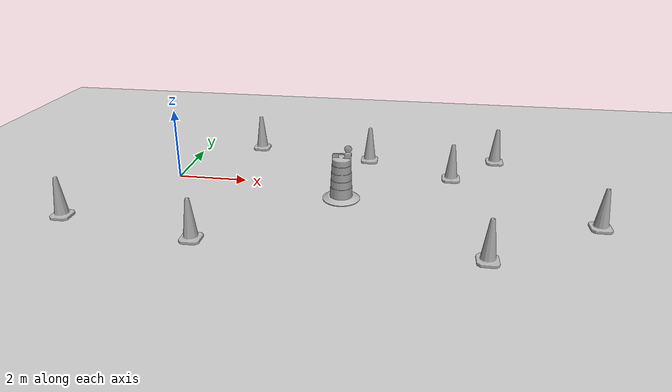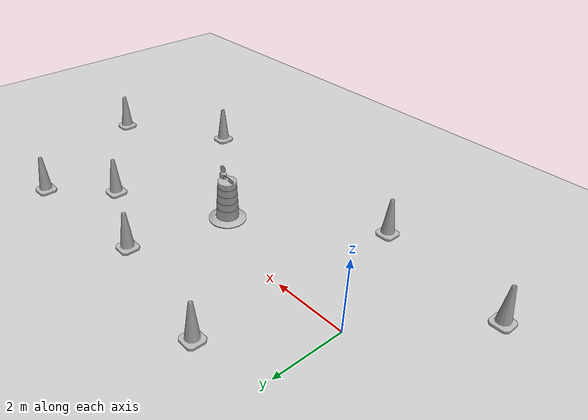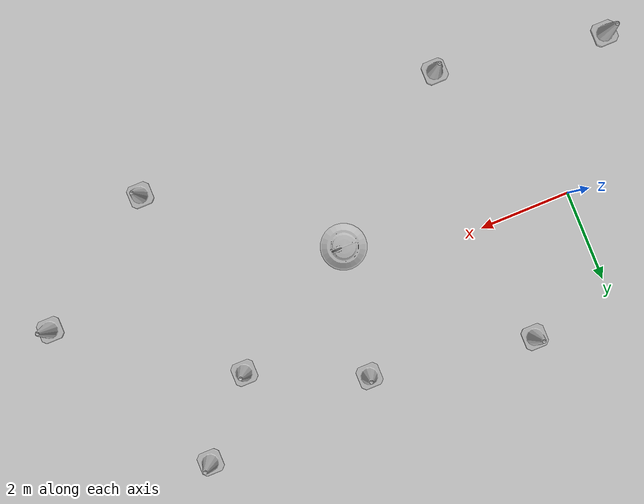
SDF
<sdf version="1.7">
 <world name="default">
  <light name="sun" type="directional">
   <pose>0 0 10 0 -0 0</pose>
   <diffuse>0.8 0.8 0.8 1</diffuse>
   <specular>0.2 0.2 0.2 1</specular>
   <attenuation>
    <range>1000</range>
    <constant>0.9</constant>
    <linear>0.01</linear>
    <quadratic>0.001</quadratic>
   </attenuation>
   <direction>-0.5 0.1 -0.9</direction>
   <spot><inner_angle>0</inner_angle><outer_angle>0</outer_angle><falloff>0</falloff></spot>
  </light>
  <model name="ground_plane">
   <static>1</static>
   <link name="link">
    <collision name="collision">
     <geometry><plane><normal>0 0 1</normal><size>100 100</size></plane></geometry>
     <surface>
      <contact><collide_bitmask>65535</collide_bitmask></contact>
      <friction><ode><mu>100</mu><mu2>50</mu2></ode></friction>
     </surface>
    </collision>
    <visual name="visual">
     <cast_shadows>0</cast_shadows>
     <geometry><plane><normal>0 0 1</normal><size>100 100</size></plane></geometry>
     <material>
      <script><uri>file://media/materials/scripts/gazebo.material</uri><name>Gazebo/Grey</name></script>
     </material>
    </visual>
   </link>
  </model>
  <gravity>0 0 -9.8</gravity>
  <magnetic_field>6e-06 2.3e-05 -4.2e-05</magnetic_field>
  <atmosphere type="adiabatic"/>
  <physics type="ode">
   <max_step_size>0.001</max_step_size>
   <real_time_factor>1</real_time_factor>
   <real_time_update_rate>1000</real_time_update_rate>
  </physics>
  <scene><ambient>0.4 0.4 0.4 1</ambient><background>0.7 0.7 0.7 1</background><shadows>1</shadows></scene>
  <audio><device>default</device></audio>
  <spherical_coordinates>
   <surface_model>EARTH_WGS84</surface_model>
   <latitude_deg>0</latitude_deg>
   <longitude_deg>0</longitude_deg>
   <elevation>0</elevation>
   <heading_deg>0</heading_deg>
  </spherical_coordinates>
  <model name="Construction Cone">
   <link name="link">
    <collision name="collision">
     <geometry>
      <mesh><scale>10 10 10</scale><uri>model://construction_cone/meshes/construction_cone.dae</uri></mesh>
     </geometry>
    </collision>
    <visual name="visual">
     <geometry>
      <mesh><scale>10 10 10</scale><uri>model://construction_cone/meshes/construction_cone.dae</uri></mesh>
     </geometry>
    </visual>
    <inertial>
     <inertia><ixx>1</ixx><ixy>0</ixy><ixz>0</ixz><iyy>1</iyy><iyz>0</iyz><izz>1</izz></inertia>
     <mass>1</mass>
    </inertial>
   </link>
   <pose>7.91117 0.941153 -0 0 -1e-06 0</pose>
  </model>
  <model name="Construction Cone_0">
   <link name="link">
    <collision name="collision">
     <geometry>
      <mesh><scale>10 10 10</scale><uri>model://construction_cone/meshes/construction_cone.dae</uri></mesh>
     </geometry>
    </collision>
    <visual name="visual">
     <geometry>
      <mesh><scale>10 10 10</scale><uri>model://construction_cone/meshes/construction_cone.dae</uri></mesh>
     </geometry>
    </visual>
    <inertial>
     <inertia><ixx>1</ixx><ixy>0</ixy><ixz>0</ixz><iyy>1</iyy><iyz>0</iyz><izz>1</izz></inertia>
     <mass>1</mass>
    </inertial>
   </link>
   <pose>9.31199 2.44932 -0 0 -0 0</pose>
  </model>
  <model name="Construction Barrel">
   <link name="link">
    <inertial>
     <pose>0 0 0.4 0 -0 0</pose>
     <mass>500</mass>
     <inertia><ixx>51.2096</ixx><iyy>51.2096</iyy><izz>25</izz><ixy>0</ixy><ixz>0</ixz><iyz>0</iyz></inertia>
    </inertial>
    <collision name="collision">
     <geometry><mesh><uri>model://construction_barrel/meshes/construction_barrel.dae</uri></mesh></geometry>
    </collision>
    <visual name="visual">
     <geometry><mesh><uri>model://construction_barrel/meshes/construction_barrel.dae</uri></mesh></geometry>
    </visual>
   </link>
   <pose>4.90243 -0.76101 -2e-06 1e-06 8e-06 -2.6e-05</pose>
  </model>
  <model name="Construction Cone_1">
   <link name="link">
    <collision name="collision">
     <geometry>
      <mesh><scale>10 10 10</scale><uri>model://construction_cone/meshes/construction_cone.dae</uri></mesh>
     </geometry>
    </collision>
    <visual name="visual">
     <geometry>
      <mesh><scale>10 10 10</scale><uri>model://construction_cone/meshes/construction_cone.dae</uri></mesh>
     </geometry>
    </visual>
    <inertial>
     <inertia><ixx>1</ixx><ixy>0</ixy><ixz>0</ixz><iyy>1</iyy><iyz>0</iyz><izz>1</izz></inertia>
     <mass>1</mass>
    </inertial>
   </link>
   <pose>8.53321 -3.44807 -9e-06 1e-06 -1e-06 0</pose>
  </model>
  <model name="Construction Cone_2">
   <link name="link">
    <collision name="collision">
     <geometry>
      <mesh><scale>10 10 10</scale><uri>model://construction_cone/meshes/construction_cone.dae</uri></mesh>
     </geometry>
    </collision>
    <visual name="visual">
     <geometry>
      <mesh><scale>10 10 10</scale><uri>model://construction_cone/meshes/construction_cone.dae</uri></mesh>
     </geometry>
    </visual>
    <inertial>
     <inertia><ixx>1</ixx><ixy>0</ixy><ixz>0</ixz><iyy>1</iyy><iyz>0</iyz><izz>1</izz></inertia>
     <mass>1</mass>
    </inertial>
   </link>
   <pose>11.4257 -1.49724 -0 0 -1e-06 0</pose>
  </model>
  <model name="Construction Cone_3">
   <link name="link">
    <collision name="collision">
     <geometry>
      <mesh><scale>10 10 10</scale><uri>model://construction_cone/meshes/construction_cone.dae</uri></mesh>
     </geometry>
    </collision>
    <visual name="visual">
     <geometry>
      <mesh><scale>10 10 10</scale><uri>model://construction_cone/meshes/construction_cone.dae</uri></mesh>
     </geometry>
    </visual>
    <inertial>
     <inertia><ixx>1</ixx><ixy>0</ixy><ixz>0</ixz><iyy>1</iyy><iyz>0</iyz><izz>1</izz></inertia>
     <mass>1</mass>
    </inertial>
   </link>
   <pose>-2.03477 -2.88232 -0 0 -1e-06 0</pose>
  </model>
  <model name="Construction Cone_4">
   <link name="link">
    <collision name="collision">
     <geometry>
      <mesh><scale>10 10 10</scale><uri>model://construction_cone/meshes/construction_cone.dae</uri></mesh>
     </geometry>
    </collision>
    <visual name="visual">
     <geometry>
      <mesh><scale>10 10 10</scale><uri>model://construction_cone/meshes/construction_cone.dae</uri></mesh>
     </geometry>
    </visual>
    <inertial>
     <inertia><ixx>1</ixx><ixy>0</ixy><ixz>0</ixz><iyy>1</iyy><iyz>0</iyz><izz>1</izz></inertia>
     <mass>1</mass>
    </inertial>
   </link>
   <pose>1.65769 -3.50787 -8e-06 -6e-06 0 0</pose>
  </model>
  <model name="Construction Cone_5">
   <link name="link">
    <collision name="collision">
     <geometry>
      <mesh><scale>10 10 10</scale><uri>model://construction_cone/meshes/construction_cone.dae</uri></mesh>
     </geometry>
    </collision>
    <visual name="visual">
     <geometry>
      <mesh><scale>10 10 10</scale><uri>model://construction_cone/meshes/construction_cone.dae</uri></mesh>
     </geometry>
    </visual>
    <inertial>
     <inertia><ixx>1</ixx><ixy>0</ixy><ixz>0</ixz><iyy>1</iyy><iyz>0</iyz><izz>1</izz></inertia>
     <mass>1</mass>
    </inertial>
   </link>
   <pose>5.44417 2.02715 -0 0 -0 0</pose>
  </model>
  <model name="Construction Cone_6">
   <link name="link">
    <collision name="collision">
     <geometry>
      <mesh><scale>10 10 10</scale><uri>model://construction_cone/meshes/construction_cone.dae</uri></mesh>
     </geometry>
    </collision>
    <visual name="visual">
     <geometry>
      <mesh><scale>10 10 10</scale><uri>model://construction_cone/meshes/construction_cone.dae</uri></mesh>
     </geometry>
    </visual>
    <inertial>
     <inertia><ixx>1</ixx><ixy>0</ixy><ixz>0</ixz><iyy>1</iyy><iyz>0</iyz><izz>1</izz></inertia>
     <mass>1</mass>
    </inertial>
   </link>
   <pose>1.83481 2.59797 -0 0 -1e-06 0</pose>
  </model>
 </world>
</sdf>
